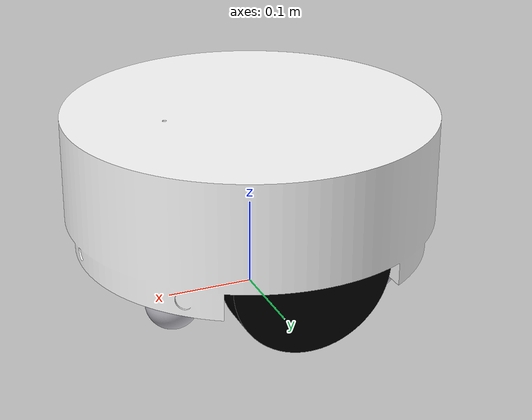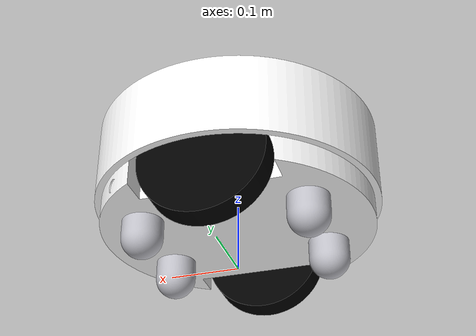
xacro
<?xml version="1.0" ?>
<robot xmlns:xacro="http://www.ros.org/wiki/xacro">

<xacro:include filename="$(find my_amr)/description/materials.xacro" />

<xacro:property name="wheel_radius" value="0.09"/>
<xacro:property name="wheel_thickness" value="0.04"/>
<xacro:property name="wheel_mass" value="0.8"/>
<xacro:property name="caster_wheel_radius" value="0.045"/>
<xacro:property name="caster_wheel_mass" value="0.2"/>

<joint name="base_footprint_joint" type="fixed">
  <parent link="base_link"/>
  <child link="base_footprint"/>
  <origin xyz="0 0 0" rpy="0 0 0"/>
</joint>

<link name="base_footprint">
</link>

<link name="base_link">
  <inertial>
    <origin xyz="-1.608079915230958e-05 -2.1937365419521377e-08 0.13897786839067583" rpy="0 0 0"/>
    <mass value="5.26629601620555"/>
    <inertia ixx="0.212732" iyy="0.303577" izz="0.429345" ixy="0.0" iyz="-0.0" ixz="-2.1e-05"/>
  </inertial>
  <visual>
    <origin xyz="0 0 0" rpy="0 0 0"/>
    <geometry>
      <mesh filename="file://$(find my_amr)/meshes/base_link.stl" scale="0.001 0.001 0.001"/>
    </geometry>
    <material name="white"/>
  </visual>
  <collision>
    <origin xyz="0 0 0" rpy="0 0 0"/>
    <geometry>
      <mesh filename="file://$(find my_amr)/meshes/base_link.stl" scale="0.001 0.001 0.001"/>
    </geometry>
  </collision>
</link>

<gazebo reference="base_link">
  <material>Gazebo/White</material>
</gazebo>

<link name="left_wheel_1">
  <inertial>
    <origin xyz="2.220446049250313e-18 0.020000000000000046 -1.3877787807814457e-17" rpy="0 0 0"/>
    <mass value="0.9466246983796763"/>
    <inertia ixx="0.002043" iyy="0.003834" izz="0.002043" ixy="0.0" iyz="-0.0" ixz="0.0"/>
  </inertial>
  <visual>
    <origin xyz="-0.0 -0.133205 -0.09" rpy="0 0 0"/>
    <geometry>
      <mesh filename="file://$(find my_amr)/meshes/left_wheel_1.stl" scale="0.001 0.001 0.001"/>
    </geometry>
    <material name="black"/>
  </visual>
  <collision>
    <geometry>
        <sphere radius="${wheel_radius}"/>
    </geometry>
  </collision>
</link>

<gazebo reference="left_wheel_1">
  <material>Gazebo/Black</material>
  </gazebo>

<link name="right_wheel_1">
  <inertial>
    <origin xyz="0.0 -0.020000000000000046 0.0" rpy="0 0 0"/>
    <mass value="0.9466246983796763"/>
    <inertia ixx="0.002043" iyy="0.003834" izz="0.002043" ixy="-0.0" iyz="0.0" ixz="-0.0"/>
  </inertial>
  <visual>
    <origin xyz="-0.0 0.133205 -0.09" rpy="0 0 0"/>
    <geometry>
      <mesh filename="file://$(find my_amr)/meshes/right_wheel_1.stl" scale="0.001 0.001 0.001"/>
    </geometry>
    <material name="black"/>
  </visual>
  <collision>
    <geometry>
        <sphere radius="${wheel_radius}"/>
    </geometry>
  </collision>
</link>

<gazebo reference="right_wheel_1">
  <material>Gazebo/Black</material>
</gazebo>

<link name="caster2_1">
  <inertial>
    <origin xyz="-2.7755575615628914e-17 0.0 -0.024282671784564218" rpy="0 0 0"/>
    <mass value="0.2"/>
    <inertia ixx="0.00044" iyy="0.00044" izz="0.000435" ixy="-0.0" iyz="0.0" ixz="-0.0"/>
  </inertial>
  <visual>
    <origin xyz="0.12 -0.07 -0.057513" rpy="0 0 0"/>
    <geometry>
      <mesh filename="file://$(find my_amr)/meshes/caster2_1.stl" scale="0.001 0.001 0.001"/>
    </geometry>
    <material name="silver"/>
  </visual>
  <collision>
    <origin xyz="0 0 -0.012" rpy="0 0 0"/>
    <geometry>
        <sphere radius="${caster_wheel_radius}"/>
    </geometry>
  </collision>
</link>

<gazebo reference="caster2_1">
  <material>Gazebo/Black</material>
  <mu1 value="0.001"/>
  <mu2 value="0.001"/>
  </gazebo>

<link name="caster1_1">
  <inertial>
    <origin xyz="-2.7755575615628914e-17 0.0 -0.024282671784564225" rpy="0 0 0"/>
    <mass value="0.2"/>
    <inertia ixx="0.00044" iyy="0.00044" izz="0.000435" ixy="0.0" iyz="-0.0" ixz="0.0"/>
  </inertial>
  <visual>
    <origin xyz="0.12 0.065 -0.057513" rpy="0 0 0"/>
    <geometry>
      <mesh filename="file://$(find my_amr)/meshes/caster1_1.stl" scale="0.001 0.001 0.001"/>
    </geometry>
    <material name="silver"/>
  </visual>
  <collision>
    <origin xyz="0 0 -0.012" rpy="0 0 0"/>
    <geometry>
        <sphere radius="${caster_wheel_radius}"/>
    </geometry>
  </collision>
</link>

<gazebo reference="caster1_1">
  <material>Gazebo/Black</material>
  <mu1 value="0.001"/>
  <mu2 value="0.001"/>
  </gazebo>

<link name="caster3_1">
  <inertial>
    <origin xyz="0.0 0.0 -0.024282671784564225" rpy="0 0 0"/>
    <mass value="0.2"/>
    <inertia ixx="0.00044" iyy="0.00044" izz="0.000435" ixy="0.0" iyz="-0.0" ixz="-0.0"/>
  </inertial>
  <visual>
    <origin xyz="-0.12 0.065 -0.057513" rpy="0 0 0"/>
    <geometry>
      <mesh filename="file://$(find my_amr)/meshes/caster3_1.stl" scale="0.001 0.001 0.001"/>
    </geometry>
    <material name="silver"/>
  </visual>
  <collision>
    <origin xyz="0 0 -0.012" rpy="0 0 0"/>
    <geometry>
        <sphere radius="${caster_wheel_radius}"/>
    </geometry>
  </collision>
</link>

<gazebo reference="caster3_1">
  <material>Gazebo/Black</material>
  <mu1 value="0.001"/>
  <mu2 value="0.001"/>
  </gazebo>

<link name="caster4_1">
  <inertial>
    <origin xyz="0.0 0.0 -0.024282671784564218" rpy="0 0 0"/>
    <mass value="0.2"/>
    <inertia ixx="0.00044" iyy="0.00044" izz="0.000435" ixy="0.0" iyz="0.0" ixz="-0.0"/>
  </inertial>
  <visual>
    <origin xyz="-0.12 -0.07 -0.059513" rpy="0 0 0"/>
    <geometry>
      <mesh filename="file://$(find my_amr)/meshes/caster4_1.stl" scale="0.001 0.001 0.001"/>
    </geometry>
    <material name="silver"/>
  </visual>
  <collision>
    <origin xyz="0 0 -0.012" rpy="0 0 0"/>
    <geometry>
        <sphere radius="${caster_wheel_radius}"/>
    </geometry>
  </collision>
</link>

<gazebo reference="caster4_1">
  <material>Gazebo/Black</material>
  <mu1 value="0.001"/>
  <mu2 value="0.001"/>
  </gazebo>

<joint name="left_wheel_joint" type="continuous">
  <origin xyz="0.0 0.133205 0.09" rpy="0 0 0"/>
  <parent link="base_link"/>
  <child link="left_wheel_1"/>
  <axis xyz="0.0 1.0 0.0"/>
</joint>

<joint name="right_wheel_joint" type="continuous">
  <origin xyz="0.0 -0.133205 0.09" rpy="0 0 0"/>
  <parent link="base_link"/>
  <child link="right_wheel_1"/>
  <axis xyz="0.0 1.0 0.0"/>
</joint>

<joint name="castor2_joint" type="fixed">
  <origin xyz="-0.12 0.07 0.057513" rpy="0 0 0"/>
  <parent link="base_link"/>
  <child link="caster2_1"/>
</joint>

<joint name="castor1_joint" type="fixed">
  <origin xyz="-0.12 -0.065 0.057513" rpy="0 0 0"/>
  <parent link="base_link"/>
  <child link="caster1_1"/>
</joint>

<joint name="castor3_joint" type="fixed">
  <origin xyz="0.12 -0.065 0.057513" rpy="0 0 0"/>
  <parent link="base_link"/>
  <child link="caster3_1"/>
</joint>

<joint name="castor4_joint" type="fixed">
  <origin xyz="0.12 0.07 0.059513" rpy="0 0 0"/>
  <parent link="base_link"/>
  <child link="caster4_1"/>
</joint>

</robot>

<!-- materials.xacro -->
<robot xmlns:xacro="http://www.ros.org/wiki/xacro" >

<material name="white">
  <color rgba="01.00 01.00 01.00 1.000"/>
</material>

<material name="blue">
  <color rgba="00.00 00.00 00.00 1.000"/>
</material>

<material name="black">
  <color rgba="00.00 00.00 00.00 1.000"/>
</material>

<material name="grey">
  <color rgba="00.40 00.40 00.40 1.000"/>
</material>

</robot>
